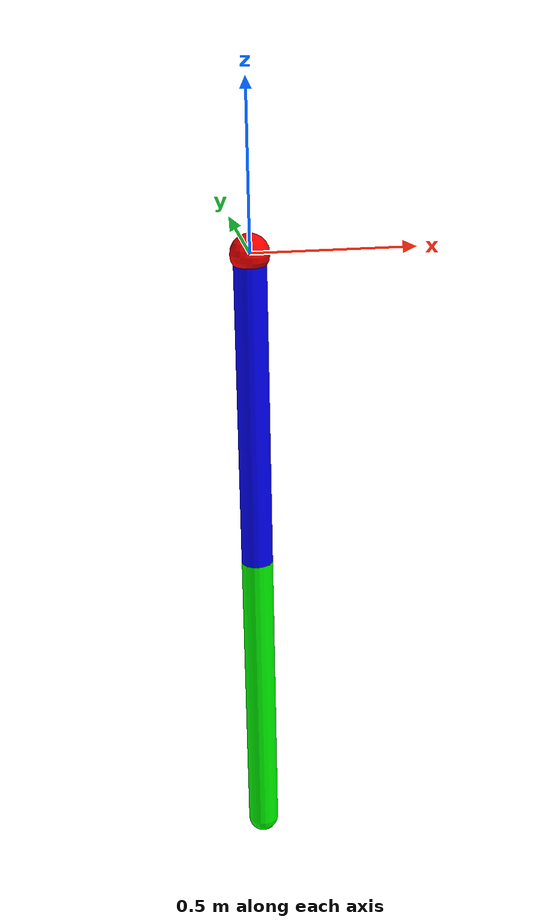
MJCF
<mujoco model="acrobot">

    <option timestep="0.002"
            gravity="0 0 -9.81"
            integrator="RK4"/>

    <compiler angle="radian"/>

    <default>
        <geom density="1000"
              friction="0.1 0.1 0.1"
              rgba="0.7 0.7 0.7 1"/>

    </default>

    <visual>
        <headlight diffuse="0.6 0.6 0.6"
                   ambient="0.3 0.3 0.3"
                   specular="0 0 0"/>
    </visual>

    <worldbody>

        <camera name="fixed"
                pos="3 -3 2"
                xyaxes="1 1 0  -0.5 0.5 1"/>

        <body name="base" pos="0 0 0">

            <!-- Small sphere showing pivot -->
            <geom type="sphere"
                  size="0.06"
                  rgba="1 0 0 1"/>

            <body name="link1" pos="0 0 0">

                <!-- Shoulder Joint (Passive) -->
                <joint name="joint1"
                       type="hinge"
                       axis="0 1 0"
                       pos="0 0 0"/>

                <!-- First Rod -->
                <geom type="capsule"
                      fromto="0 0 0  0 0 -1"
                      size="0.05"
                      rgba="0 0 1 1"/>

                <body name="link2" pos="0 0 -1">

                    <!-- Elbow Joint (Actuated) -->
                    <joint name="joint2"
                           type="hinge"
                           axis="0 1 0"
                           pos="0 0 0"/>

                    <!-- Second Rod -->
                    <geom type="capsule"
                          fromto="0 0 0  0 0 -1"
                          size="0.05"
                          rgba="0 1 0 1"/>

                </body>
            </body>
        </body>

    </worldbody>

    <actuator>

        <!-- Motor at elbow -->
        <motor joint="joint2"
               gear="1"/>

    </actuator>

</mujoco>
